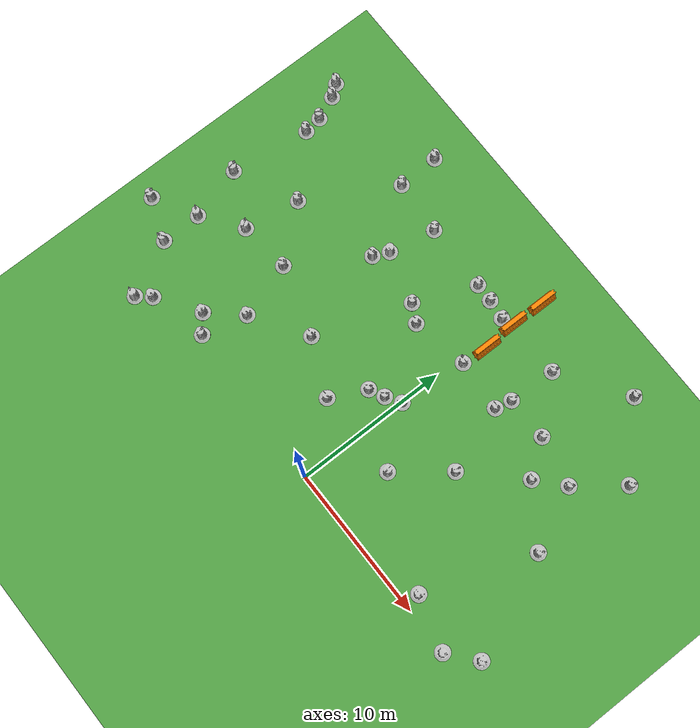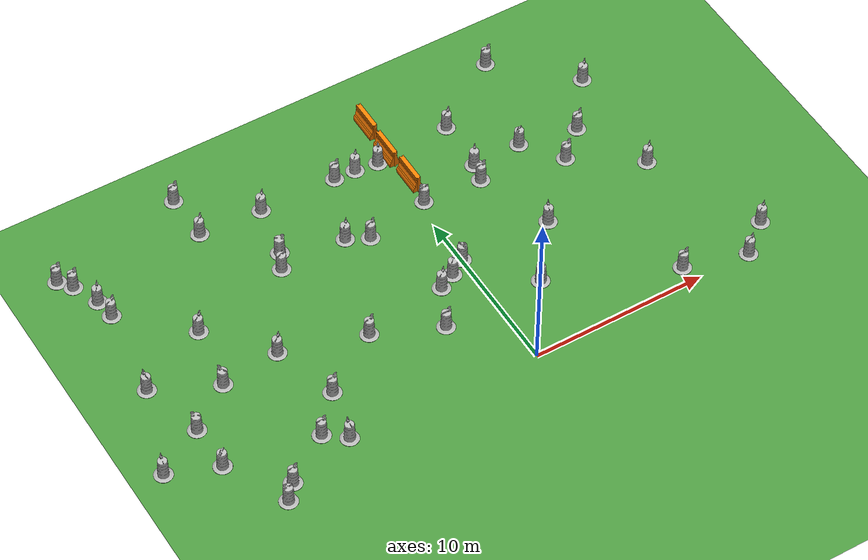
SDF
<?xml version="1.0" ?>
<sdf version="1.3">
  <world name="default">
    <physics type="ode">
      <gravity>0 0 -9.81</gravity>
      <ode>
        <solver>
          <type>quick</type>
          <iters>50</iters>
          <sor>1.4</sor>
        </solver>
        <constraints>
          <cfm>0.0</cfm>
          <erp>0.2</erp>
          <contact_max_correcting_vel>10.0</contact_max_correcting_vel>
          <contact_surface_layer>0.005</contact_surface_layer>
        </constraints>
      </ode>
    </physics>
    <scene>
      <ambient>0.4 0.4 0.4 1</ambient>
      <background>0.7 0.7 0.7 1</background>
      <shadows>1</shadows>
    </scene>
    <include>
      <uri>model://grass</uri>
    </include>
    <include>
      <uri>model://sun</uri>
    </include>
    <model name='drc_practice_organge_jersey_barrier'>
      <static>1</static>
      <link name='link'>
        <visual name='visual'>
          <geometry>
            <mesh>
              <uri>model://drc_practice_orange_jersey_barrier/meshes/jersey_barrier.dae</uri>
            </mesh>
          </geometry>
        </visual>
        <collision name='collision'>
          <pose>0 0 0.75 0 -0 0</pose>
          <geometry>
            <box>
              <size>0.65 1.8 1.5</size>
            </box>
          </geometry>
          <max_contacts>10</max_contacts>
          <surface>
            <bounce/>
            <friction>
              <ode/>
            </friction>
            <contact>
              <ode/>
            </contact>
          </surface>
        </collision>
        <velocity_decay>
          <linear>0</linear>
          <angular>0</angular>
        </velocity_decay>
        <self_collide>0</self_collide>
        <kinematic>0</kinematic>
        <gravity>1</gravity>
      </link>
      <pose>0.514773 17.7803 0 0 -0 0</pose>
    </model>
    <model name='drc_practice_organge_jersey_barrier_0'>
      <static>1</static>
      <link name='link'>
        <visual name='visual'>
          <geometry>
            <mesh>
              <uri>model://drc_practice_orange_jersey_barrier/meshes/jersey_barrier.dae</uri>
            </mesh>
          </geometry>
        </visual>
        <collision name='collision'>
          <pose>0 0 0.75 0 -0 0</pose>
          <geometry>
            <box>
              <size>0.65 1.8 1.5</size>
            </box>
          </geometry>
          <max_contacts>10</max_contacts>
          <surface>
            <bounce/>
            <friction>
              <ode/>
            </friction>
            <contact>
              <ode/>
            </contact>
          </surface>
        </collision>
        <velocity_decay>
          <linear>0</linear>
          <angular>0</angular>
        </velocity_decay>
        <self_collide>0</self_collide>
        <kinematic>0</kinematic>
        <gravity>1</gravity>
      </link>
      <pose>0.442247 15.578 0 0 -0 0</pose>
    </model>
    <model name='drc_practice_organge_jersey_barrier_1'>
      <static>1</static>
      <link name='link'>
        <visual name='visual'>
          <geometry>
            <mesh>
              <uri>model://drc_practice_orange_jersey_barrier/meshes/jersey_barrier.dae</uri>
            </mesh>
          </geometry>
        </visual>
        <collision name='collision'>
          <pose>0 0 0.75 0 -0 0</pose>
          <geometry>
            <box>
              <size>0.65 1.8 1.5</size>
            </box>
          </geometry>
          <max_contacts>10</max_contacts>
          <surface>
            <bounce/>
            <friction>
              <ode/>
            </friction>
            <contact>
              <ode/>
            </contact>
          </surface>
        </collision>
        <velocity_decay>
          <linear>0</linear>
          <angular>0</angular>
        </velocity_decay>
        <self_collide>0</self_collide>
        <kinematic>0</kinematic>
        <gravity>1</gravity>
      </link>
      <pose>0.579446 13.4107 0 0 -0 0</pose>
    </model>
    <model name='Construction Barrel'>
      <link name='link'>
        <inertial>
          <pose>0 0 0.4 0 -0 0</pose>
          <mass>500</mass>
          <inertia>
            <ixx>51.2096</ixx>
            <iyy>51.2096</iyy>
            <izz>25</izz>
            <ixy>0</ixy>
            <ixz>0</ixz>
            <iyz>0</iyz>
          </inertia>
        </inertial>
        <collision name='collision'>
          <pose>0 0 0.75 0 -0 0</pose>
          <geometry>
            <cylinder>
              <radius>0.5</radius>
              <length>1.5</length>
            </cylinder>
          </geometry>
          <max_contacts>10</max_contacts>
          <surface>
            <bounce/>
            <friction>
              <ode/>
            </friction>
            <contact>
              <ode/>
            </contact>
          </surface>
        </collision>
        <visual name='visual'>
          <geometry>
            <mesh>
              <uri>model://construction_barrel/meshes/construction_barrel.dae</uri>
            </mesh>
          </geometry>
        </visual>
        <velocity_decay>
          <linear>0</linear>
          <angular>0</angular>
        </velocity_decay>
        <self_collide>0</self_collide>
        <kinematic>0</kinematic>
        <gravity>1</gravity>
      </link>
      <pose>9.53804 1 0 0 -0 0</pose>
      <static>1</static>
    </model>
    <model name='Construction Barrel_0'>
      <link name='link'>
        <inertial>
          <pose>0 0 0.4 0 -0 0</pose>
          <mass>500</mass>
          <inertia>
            <ixx>51.2096</ixx>
            <iyy>51.2096</iyy>
            <izz>25</izz>
            <ixy>0</ixy>
            <ixz>0</ixz>
            <iyz>0</iyz>
          </inertia>
        </inertial>
        <collision name='collision'>
          <pose>0 0 0.75 0 -0 0</pose>
          <geometry>
            <cylinder>
              <radius>0.5</radius>
              <length>1.5</length>
            </cylinder>
          </geometry>
          <max_contacts>10</max_contacts>
          <surface>
            <bounce/>
            <friction>
              <ode/>
            </friction>
            <contact>
              <ode/>
            </contact>
          </surface>
        </collision>
        <visual name='visual'>
          <geometry>
            <mesh>
              <uri>model://construction_barrel/meshes/construction_barrel.dae</uri>
            </mesh>
          </geometry>
        </visual>
        <velocity_decay>
          <linear>0</linear>
          <angular>0</angular>
        </velocity_decay>
        <self_collide>0</self_collide>
        <kinematic>0</kinematic>
        <gravity>1</gravity>
      </link>
      <pose>13 0 0 0 -0 0.34</pose>
      <static>1</static>
    </model>
    <model name='Construction Barrel_1'>
      <link name='link'>
        <inertial>
          <pose>0 0 0.4 0 -0 0</pose>
          <mass>500</mass>
          <inertia>
            <ixx>51.2096</ixx>
            <iyy>51.2096</iyy>
            <izz>25</izz>
            <ixy>0</ixy>
            <ixz>0</ixz>
            <iyz>0</iyz>
          </inertia>
        </inertial>
        <collision name='collision'>
          <pose>0 0 0.75 0 -0 0</pose>
          <geometry>
            <cylinder>
              <radius>0.5</radius>
              <length>1.5</length>
            </cylinder>
          </geometry>
          <max_contacts>10</max_contacts>
          <surface>
            <bounce/>
            <friction>
              <ode/>
            </friction>
            <contact>
              <ode/>
            </contact>
          </surface>
        </collision>
        <visual name='visual'>
          <geometry>
            <mesh>
              <uri>model://construction_barrel/meshes/construction_barrel.dae</uri>
            </mesh>
          </geometry>
        </visual>
        <velocity_decay>
          <linear>0</linear>
          <angular>0</angular>
        </velocity_decay>
        <self_collide>0</self_collide>
        <kinematic>0</kinematic>
        <gravity>1</gravity>
      </link>
      <pose>14.7687 1.46616 0 0 -0 0.56</pose>
      <static>1</static>
    </model>
    <model name='Construction Barrel_2'>
      <link name='link'>
        <inertial>
          <pose>0 0 0.4 0 -0 0</pose>
          <mass>500</mass>
          <inertia>
            <ixx>51.2096</ixx>
            <iyy>51.2096</iyy>
            <izz>25</izz>
            <ixy>0</ixy>
            <ixz>0</ixz>
            <iyz>0</iyz>
          </inertia>
        </inertial>
        <collision name='collision'>
          <pose>0 0 0.75 0 -0 0</pose>
          <geometry>
            <cylinder>
              <radius>0.5</radius>
              <length>1.5</length>
            </cylinder>
          </geometry>
          <max_contacts>10</max_contacts>
          <surface>
            <bounce/>
            <friction>
              <ode/>
            </friction>
            <contact>
              <ode/>
            </contact>
          </surface>
        </collision>
        <visual name='visual'>
          <geometry>
            <mesh>
              <uri>model://construction_barrel/meshes/construction_barrel.dae</uri>
            </mesh>
          </geometry>
        </visual>
        <velocity_decay>
          <linear>0</linear>
          <angular>0</angular>
        </velocity_decay>
        <self_collide>0</self_collide>
        <kinematic>0</kinematic>
        <gravity>1</gravity>
      </link>
      <pose>12 8 0 0 -0 0.67</pose>
      <static>1</static>
    </model>
    <model name='Construction Barrel_3'>
      <link name='link'>
        <inertial>
          <pose>0 0 0.4 0 -0 0</pose>
          <mass>500</mass>
          <inertia>
            <ixx>51.2096</ixx>
            <iyy>51.2096</iyy>
            <izz>25</izz>
            <ixy>0</ixy>
            <ixz>0</ixz>
            <iyz>0</iyz>
          </inertia>
        </inertial>
        <collision name='collision'>
          <pose>0 0 0.75 0 -0 0</pose>
          <geometry>
            <cylinder>
              <radius>0.5</radius>
              <length>1.5</length>
            </cylinder>
          </geometry>
          <max_contacts>10</max_contacts>
          <surface>
            <bounce/>
            <friction>
              <ode/>
            </friction>
            <contact>
              <ode/>
            </contact>
          </surface>
        </collision>
        <visual name='visual'>
          <geometry>
            <mesh>
              <uri>model://construction_barrel/meshes/construction_barrel.dae</uri>
            </mesh>
          </geometry>
        </visual>
        <velocity_decay>
          <linear>0</linear>
          <angular>0</angular>
        </velocity_decay>
        <self_collide>0</self_collide>
        <kinematic>0</kinematic>
        <gravity>1</gravity>
      </link>
      <pose>8.43331 10.4276 0 0 -0 0</pose>
      <static>1</static>
    </model>
    <model name='Construction Barrel_4'>
      <link name='link'>
        <inertial>
          <pose>0 0 0.4 0 -0 0</pose>
          <mass>500</mass>
          <inertia>
            <ixx>51.2096</ixx>
            <iyy>51.2096</iyy>
            <izz>25</izz>
            <ixy>0</ixy>
            <ixz>0</ixz>
            <iyz>0</iyz>
          </inertia>
        </inertial>
        <collision name='collision'>
          <pose>0 0 0.75 0 -0 0</pose>
          <geometry>
            <cylinder>
              <radius>0.5</radius>
              <length>1.5</length>
            </cylinder>
          </geometry>
          <max_contacts>10</max_contacts>
          <surface>
            <bounce/>
            <friction>
              <ode/>
            </friction>
            <contact>
              <ode/>
            </contact>
          </surface>
        </collision>
        <visual name='visual'>
          <geometry>
            <mesh>
              <uri>model://construction_barrel/meshes/construction_barrel.dae</uri>
            </mesh>
          </geometry>
        </visual>
        <velocity_decay>
          <linear>0</linear>
          <angular>0</angular>
        </velocity_decay>
        <self_collide>0</self_collide>
        <kinematic>0</kinematic>
        <gravity>1</gravity>
      </link>
      <pose>10.1036 11.9209 0 0 -0 0.25</pose>
      <static>1</static>
    </model>
    <model name='Construction Barrel_5'>
      <link name='link'>
        <inertial>
          <pose>0 0 0.4 0 -0 0</pose>
          <mass>500</mass>
          <inertia>
            <ixx>51.2096</ixx>
            <iyy>51.2096</iyy>
            <izz>25</izz>
            <ixy>0</ixy>
            <ixz>0</ixz>
            <iyz>0</iyz>
          </inertia>
        </inertial>
        <collision name='collision'>
          <pose>0 0 0.75 0 -0 0</pose>
          <geometry>
            <cylinder>
              <radius>0.5</radius>
              <length>1.5</length>
            </cylinder>
          </geometry>
          <max_contacts>10</max_contacts>
          <surface>
            <bounce/>
            <friction>
              <ode/>
            </friction>
            <contact>
              <ode/>
            </contact>
          </surface>
        </collision>
        <visual name='visual'>
          <geometry>
            <mesh>
              <uri>model://construction_barrel/meshes/construction_barrel.dae</uri>
            </mesh>
          </geometry>
        </visual>
        <velocity_decay>
          <linear>0</linear>
          <angular>0</angular>
        </velocity_decay>
        <self_collide>0</self_collide>
        <kinematic>0</kinematic>
        <gravity>1</gravity>
      </link>
      <pose>12.3001 14.7701 0 0 -0 0.64</pose>
      <static>1</static>
    </model>
    <model name='Construction Barrel_6'>
      <link name='link'>
        <inertial>
          <pose>0 0 0.4 0 -0 0</pose>
          <mass>500</mass>
          <inertia>
            <ixx>51.2096</ixx>
            <iyy>51.2096</iyy>
            <izz>25</izz>
            <ixy>0</ixy>
            <ixz>0</ixz>
            <iyz>0</iyz>
          </inertia>
        </inertial>
        <collision name='collision'>
          <pose>0 0 0.75 0 -0 0</pose>
          <geometry>
            <cylinder>
              <radius>0.5</radius>
              <length>1.5</length>
            </cylinder>
          </geometry>
          <max_contacts>10</max_contacts>
          <surface>
            <bounce/>
            <friction>
              <ode/>
            </friction>
            <contact>
              <ode/>
            </contact>
          </surface>
        </collision>
        <visual name='visual'>
          <geometry>
            <mesh>
              <uri>model://construction_barrel/meshes/construction_barrel.dae</uri>
            </mesh>
          </geometry>
        </visual>
        <velocity_decay>
          <linear>0</linear>
          <angular>0</angular>
        </velocity_decay>
        <self_collide>0</self_collide>
        <kinematic>0</kinematic>
        <gravity>1</gravity>
      </link>
      <pose>4.16107 15.588 0 0 -0 0.49</pose>
      <static>1</static>
    </model>
    <model name='Construction Barrel_7'>
      <link name='link'>
        <inertial>
          <pose>0 0 0.4 0 -0 0</pose>
          <mass>500</mass>
          <inertia>
            <ixx>51.2096</ixx>
            <iyy>51.2096</iyy>
            <izz>25</izz>
            <ixy>0</ixy>
            <ixz>0</ixz>
            <iyz>0</iyz>
          </inertia>
        </inertial>
        <collision name='collision'>
          <pose>0 0 0.75 0 -0 0</pose>
          <geometry>
            <cylinder>
              <radius>0.5</radius>
              <length>1.5</length>
            </cylinder>
          </geometry>
          <max_contacts>10</max_contacts>
          <surface>
            <bounce/>
            <friction>
              <ode/>
            </friction>
            <contact>
              <ode/>
            </contact>
          </surface>
        </collision>
        <visual name='visual'>
          <geometry>
            <mesh>
              <uri>model://construction_barrel/meshes/construction_barrel.dae</uri>
            </mesh>
          </geometry>
        </visual>
        <velocity_decay>
          <linear>0</linear>
          <angular>0</angular>
        </velocity_decay>
        <self_collide>0</self_collide>
        <kinematic>0</kinematic>
        <gravity>1</gravity>
      </link>
      <pose>4.01787 12.5389 0 0 -0 0.95</pose>
      <static>1</static>
    </model>
    <model name='Construction Barrel_8'>
      <link name='link'>
        <inertial>
          <pose>0 0 0.4 0 -0 0</pose>
          <mass>500</mass>
          <inertia>
            <ixx>51.2096</ixx>
            <iyy>51.2096</iyy>
            <izz>25</izz>
            <ixy>0</ixy>
            <ixz>0</ixz>
            <iyz>0</iyz>
          </inertia>
        </inertial>
        <collision name='collision'>
          <pose>0 0 0.75 0 -0 0</pose>
          <geometry>
            <cylinder>
              <radius>0.5</radius>
              <length>1.5</length>
            </cylinder>
          </geometry>
          <max_contacts>10</max_contacts>
          <surface>
            <bounce/>
            <friction>
              <ode/>
            </friction>
            <contact>
              <ode/>
            </contact>
          </surface>
        </collision>
        <visual name='visual'>
          <geometry>
            <mesh>
              <uri>model://construction_barrel/meshes/construction_barrel.dae</uri>
            </mesh>
          </geometry>
        </visual>
        <velocity_decay>
          <linear>0</linear>
          <angular>0</angular>
        </velocity_decay>
        <self_collide>0</self_collide>
        <kinematic>0</kinematic>
        <gravity>1</gravity>
      </link>
      <pose>6.8418 12.5666 0 0 -0 10</pose>
      <static>1</static>
    </model>
    <model name='Construction Barrel_9'>
      <link name='link'>
        <inertial>
          <pose>0 0 0.4 0 -0 0</pose>
          <mass>500</mass>
          <inertia>
            <ixx>51.2096</ixx>
            <iyy>51.2096</iyy>
            <izz>25</izz>
            <ixy>0</ixy>
            <ixz>0</ixz>
            <iyz>0</iyz>
          </inertia>
        </inertial>
        <collision name='collision'>
          <pose>0 0 0.75 0 -0 0</pose>
          <geometry>
            <cylinder>
              <radius>0.5</radius>
              <length>1.5</length>
            </cylinder>
          </geometry>
          <max_contacts>10</max_contacts>
          <surface>
            <bounce/>
            <friction>
              <ode/>
            </friction>
            <contact>
              <ode/>
            </contact>
          </surface>
        </collision>
        <visual name='visual'>
          <geometry>
            <mesh>
              <uri>model://construction_barrel/meshes/construction_barrel.dae</uri>
            </mesh>
          </geometry>
        </visual>
        <velocity_decay>
          <linear>0</linear>
          <angular>0</angular>
        </velocity_decay>
        <self_collide>0</self_collide>
        <kinematic>0</kinematic>
        <gravity>1</gravity>
      </link>
      <pose>3.77118 11.4634 0 0 -0 0</pose>
      <static>1</static>
    </model>
    <model name='Construction Barrel_10'>
      <link name='link'>
        <inertial>
          <pose>0 0 0.4 0 -0 0</pose>
          <mass>500</mass>
          <inertia>
            <ixx>51.2096</ixx>
            <iyy>51.2096</iyy>
            <izz>25</izz>
            <ixy>0</ixy>
            <ixz>0</ixz>
            <iyz>0</iyz>
          </inertia>
        </inertial>
        <collision name='collision'>
          <pose>0 0 0.75 0 -0 0</pose>
          <geometry>
            <cylinder>
              <radius>0.5</radius>
              <length>1.5</length>
            </cylinder>
          </geometry>
          <max_contacts>10</max_contacts>
          <surface>
            <bounce/>
            <friction>
              <ode/>
            </friction>
            <contact>
              <ode/>
            </contact>
          </surface>
        </collision>
        <visual name='visual'>
          <geometry>
            <mesh>
              <uri>model://construction_barrel/meshes/construction_barrel.dae</uri>
            </mesh>
          </geometry>
        </visual>
        <velocity_decay>
          <linear>0</linear>
          <angular>0</angular>
        </velocity_decay>
        <self_collide>0</self_collide>
        <kinematic>0</kinematic>
        <gravity>1</gravity>
      </link>
      <pose>5.26991 7.20337 0 0 -0 1.2</pose>
      <static>1</static>
    </model>
    <model name='Construction Barrel_11'>
      <link name='link'>
        <inertial>
          <pose>0 0 0.4 0 -0 0</pose>
          <mass>500</mass>
          <inertia>
            <ixx>51.2096</ixx>
            <iyy>51.2096</iyy>
            <izz>25</izz>
            <ixy>0</ixy>
            <ixz>0</ixz>
            <iyz>0</iyz>
          </inertia>
        </inertial>
        <collision name='collision'>
          <pose>0 0 0.75 0 -0 0</pose>
          <geometry>
            <cylinder>
              <radius>0.5</radius>
              <length>1.5</length>
            </cylinder>
          </geometry>
          <max_contacts>10</max_contacts>
          <surface>
            <bounce/>
            <friction>
              <ode/>
            </friction>
            <contact>
              <ode/>
            </contact>
          </surface>
        </collision>
        <visual name='visual'>
          <geometry>
            <mesh>
              <uri>model://construction_barrel/meshes/construction_barrel.dae</uri>
            </mesh>
          </geometry>
        </visual>
        <velocity_decay>
          <linear>0</linear>
          <angular>0</angular>
        </velocity_decay>
        <self_collide>0</self_collide>
        <kinematic>0</kinematic>
        <gravity>1</gravity>
      </link>
      <pose>0.418745 11.7073 0 0 -0 3.14</pose>
      <static>1</static>
    </model>
    <model name='Construction Barrel_12'>
      <link name='link'>
        <inertial>
          <pose>0 0 0.4 0 -0 0</pose>
          <mass>500</mass>
          <inertia>
            <ixx>51.2096</ixx>
            <iyy>51.2096</iyy>
            <izz>25</izz>
            <ixy>0</ixy>
            <ixz>0</ixz>
            <iyz>0</iyz>
          </inertia>
        </inertial>
        <collision name='collision'>
          <pose>0 0 0.75 0 -0 0</pose>
          <geometry>
            <cylinder>
              <radius>0.5</radius>
              <length>1.5</length>
            </cylinder>
          </geometry>
          <max_contacts>10</max_contacts>
          <surface>
            <bounce/>
            <friction>
              <ode/>
            </friction>
            <contact>
              <ode/>
            </contact>
          </surface>
        </collision>
        <visual name='visual'>
          <geometry>
            <mesh>
              <uri>model://construction_barrel/meshes/construction_barrel.dae</uri>
            </mesh>
          </geometry>
        </visual>
        <velocity_decay>
          <linear>0</linear>
          <angular>0</angular>
        </velocity_decay>
        <self_collide>0</self_collide>
        <kinematic>0</kinematic>
        <gravity>1</gravity>
      </link>
      <pose>8.41186 18.4582 0 0 -0 0</pose>
      <static>1</static>
    </model>
    <model name='Construction Barrel_13'>
      <link name='link'>
        <inertial>
          <pose>0 0 0.4 0 -0 0</pose>
          <mass>500</mass>
          <inertia>
            <ixx>51.2096</ixx>
            <iyy>51.2096</iyy>
            <izz>25</izz>
            <ixy>0</ixy>
            <ixz>0</ixz>
            <iyz>0</iyz>
          </inertia>
        </inertial>
        <collision name='collision'>
          <pose>0 0 0.75 0 -0 0</pose>
          <geometry>
            <cylinder>
              <radius>0.5</radius>
              <length>1.5</length>
            </cylinder>
          </geometry>
          <max_contacts>10</max_contacts>
          <surface>
            <bounce/>
            <friction>
              <ode/>
            </friction>
            <contact>
              <ode/>
            </contact>
          </surface>
        </collision>
        <visual name='visual'>
          <geometry>
            <mesh>
              <uri>model://construction_barrel/meshes/construction_barrel.dae</uri>
            </mesh>
          </geometry>
        </visual>
        <velocity_decay>
          <linear>0</linear>
          <angular>0</angular>
        </velocity_decay>
        <self_collide>0</self_collide>
        <kinematic>0</kinematic>
        <gravity>1</gravity>
      </link>
      <pose>0.055808 7.30387 0 0 -0 5.1</pose>
      <static>1</static>
    </model>
    <model name='Construction Barrel_14'>
      <link name='link'>
        <inertial>
          <pose>0 0 0.4 0 -0 0</pose>
          <mass>500</mass>
          <inertia>
            <ixx>51.2096</ixx>
            <iyy>51.2096</iyy>
            <izz>25</izz>
            <ixy>0</ixy>
            <ixz>0</ixz>
            <iyz>0</iyz>
          </inertia>
        </inertial>
        <collision name='collision'>
          <pose>0 0 0.75 0 -0 0</pose>
          <geometry>
            <cylinder>
              <radius>0.5</radius>
              <length>1.5</length>
            </cylinder>
          </geometry>
          <max_contacts>10</max_contacts>
          <surface>
            <bounce/>
            <friction>
              <ode/>
            </friction>
            <contact>
              <ode/>
            </contact>
          </surface>
        </collision>
        <visual name='visual'>
          <geometry>
            <mesh>
              <uri>model://construction_barrel/meshes/construction_barrel.dae</uri>
            </mesh>
          </geometry>
        </visual>
        <velocity_decay>
          <linear>0</linear>
          <angular>0</angular>
        </velocity_decay>
        <self_collide>0</self_collide>
        <kinematic>0</kinematic>
        <gravity>1</gravity>
      </link>
      <pose>2.78714 4.0228 0 0 -0 74</pose>
      <static>1</static>
    </model>
    <model name='Construction Barrel_15'>
      <link name='link'>
        <inertial>
          <pose>0 0 0.4 0 -0 0</pose>
          <mass>500</mass>
          <inertia>
            <ixx>51.2096</ixx>
            <iyy>51.2096</iyy>
            <izz>25</izz>
            <ixy>0</ixy>
            <ixz>0</ixz>
            <iyz>0</iyz>
          </inertia>
        </inertial>
        <collision name='collision'>
          <pose>0 0 0.75 0 -0 0</pose>
          <geometry>
            <cylinder>
              <radius>0.5</radius>
              <length>1.5</length>
            </cylinder>
          </geometry>
          <max_contacts>10</max_contacts>
          <surface>
            <bounce/>
            <friction>
              <ode/>
            </friction>
            <contact>
              <ode/>
            </contact>
          </surface>
        </collision>
        <visual name='visual'>
          <geometry>
            <mesh>
              <uri>model://construction_barrel/meshes/construction_barrel.dae</uri>
            </mesh>
          </geometry>
        </visual>
        <velocity_decay>
          <linear>0</linear>
          <angular>0</angular>
        </velocity_decay>
        <self_collide>0</self_collide>
        <kinematic>0</kinematic>
        <gravity>1</gravity>
      </link>
      <pose>-0.886487 6.70646 0 0 -0 0.75</pose>
      <static>1</static>
    </model>
    <model name='Construction Barrel_16'>
      <link name='link'>
        <inertial>
          <pose>0 0 0.4 0 -0 0</pose>
          <mass>500</mass>
          <inertia>
            <ixx>51.2096</ixx>
            <iyy>51.2096</iyy>
            <izz>25</izz>
            <ixy>0</ixy>
            <ixz>0</ixz>
            <iyz>0</iyz>
          </inertia>
        </inertial>
        <collision name='collision'>
          <pose>0 0 0.75 0 -0 0</pose>
          <geometry>
            <cylinder>
              <radius>0.5</radius>
              <length>1.5</length>
            </cylinder>
          </geometry>
          <max_contacts>10</max_contacts>
          <surface>
            <bounce/>
            <friction>
              <ode/>
            </friction>
            <contact>
              <ode/>
            </contact>
          </surface>
        </collision>
        <visual name='visual'>
          <geometry>
            <mesh>
              <uri>model://construction_barrel/meshes/construction_barrel.dae</uri>
            </mesh>
          </geometry>
        </visual>
        <velocity_decay>
          <linear>0</linear>
          <angular>0</angular>
        </velocity_decay>
        <self_collide>0</self_collide>
        <kinematic>0</kinematic>
        <gravity>1</gravity>
      </link>
      <pose>-1.83836 6.23426 0 0 -0 0.66</pose>
      <static>1</static>
    </model>
    <model name='Construction Barrel_17'>
      <link name='link'>
        <inertial>
          <pose>0 0 0.4 0 -0 0</pose>
          <mass>500</mass>
          <inertia>
            <ixx>51.2096</ixx>
            <iyy>51.2096</iyy>
            <izz>25</izz>
            <ixy>0</ixy>
            <ixz>0</ixz>
            <iyz>0</iyz>
          </inertia>
        </inertial>
        <collision name='collision'>
          <pose>0 0 0.75 0 -0 0</pose>
          <geometry>
            <cylinder>
              <radius>0.5</radius>
              <length>1.5</length>
            </cylinder>
          </geometry>
          <max_contacts>10</max_contacts>
          <surface>
            <bounce/>
            <friction>
              <ode/>
            </friction>
            <contact>
              <ode/>
            </contact>
          </surface>
        </collision>
        <visual name='visual'>
          <geometry>
            <mesh>
              <uri>model://construction_barrel/meshes/construction_barrel.dae</uri>
            </mesh>
          </geometry>
        </visual>
        <velocity_decay>
          <linear>0</linear>
          <angular>0</angular>
        </velocity_decay>
        <self_collide>0</self_collide>
        <kinematic>0</kinematic>
        <gravity>1</gravity>
      </link>
      <pose>-2.96616 3.94142 0 0 -0 0.04</pose>
      <static>1</static>
    </model>
    <model name='Construction Barrel_18'>
      <link name='link'>
        <inertial>
          <pose>0 0 0.4 0 -0 0</pose>
          <mass>500</mass>
          <inertia>
            <ixx>51.2096</ixx>
            <iyy>51.2096</iyy>
            <izz>25</izz>
            <ixy>0</ixy>
            <ixz>0</ixz>
            <iyz>0</iyz>
          </inertia>
        </inertial>
        <collision name='collision'>
          <pose>0 0 0.75 0 -0 0</pose>
          <geometry>
            <cylinder>
              <radius>0.5</radius>
              <length>1.5</length>
            </cylinder>
          </geometry>
          <max_contacts>10</max_contacts>
          <surface>
            <bounce/>
            <friction>
              <ode/>
            </friction>
            <contact>
              <ode/>
            </contact>
          </surface>
        </collision>
        <visual name='visual'>
          <geometry>
            <mesh>
              <uri>model://construction_barrel/meshes/construction_barrel.dae</uri>
            </mesh>
          </geometry>
        </visual>
        <velocity_decay>
          <linear>0</linear>
          <angular>0</angular>
        </velocity_decay>
        <self_collide>0</self_collide>
        <kinematic>0</kinematic>
        <gravity>1</gravity>
      </link>
      <pose>-3.24854 11.0137 0 0 -0 0.234</pose>
      <static>1</static>
    </model>
    <model name='Construction Barrel_19'>
      <link name='link'>
        <inertial>
          <pose>0 0 0.4 0 -0 0</pose>
          <mass>500</mass>
          <inertia>
            <ixx>51.2096</ixx>
            <iyy>51.2096</iyy>
            <izz>25</izz>
            <ixy>0</ixy>
            <ixz>0</ixz>
            <iyz>0</iyz>
          </inertia>
        </inertial>
        <collision name='collision'>
          <pose>0 0 0.75 0 -0 0</pose>
          <geometry>
            <cylinder>
              <radius>0.5</radius>
              <length>1.5</length>
            </cylinder>
          </geometry>
          <max_contacts>10</max_contacts>
          <surface>
            <bounce/>
            <friction>
              <ode/>
            </friction>
            <contact>
              <ode/>
            </contact>
          </surface>
        </collision>
        <visual name='visual'>
          <geometry>
            <mesh>
              <uri>model://construction_barrel/meshes/construction_barrel.dae</uri>
            </mesh>
          </geometry>
        </visual>
        <velocity_decay>
          <linear>0</linear>
          <angular>0</angular>
        </velocity_decay>
        <self_collide>0</self_collide>
        <kinematic>0</kinematic>
        <gravity>1</gravity>
      </link>
      <pose>-6.56873 5.52935 0 0 -0 0.144</pose>
      <static>1</static>
    </model>
    <model name='Construction Barrel_20'>
      <link name='link'>
        <inertial>
          <pose>0 0 0.4 0 -0 0</pose>
          <mass>500</mass>
          <inertia>
            <ixx>51.2096</ixx>
            <iyy>51.2096</iyy>
            <izz>25</izz>
            <ixy>0</ixy>
            <ixz>0</ixz>
            <iyz>0</iyz>
          </inertia>
        </inertial>
        <collision name='collision'>
          <pose>0 0 0.75 0 -0 0</pose>
          <geometry>
            <cylinder>
              <radius>0.5</radius>
              <length>1.5</length>
            </cylinder>
          </geometry>
          <max_contacts>10</max_contacts>
          <surface>
            <bounce/>
            <friction>
              <ode/>
            </friction>
            <contact>
              <ode/>
            </contact>
          </surface>
        </collision>
        <visual name='visual'>
          <geometry>
            <mesh>
              <uri>model://construction_barrel/meshes/construction_barrel.dae</uri>
            </mesh>
          </geometry>
        </visual>
        <velocity_decay>
          <linear>0</linear>
          <angular>0</angular>
        </velocity_decay>
        <self_collide>0</self_collide>
        <kinematic>0</kinematic>
        <gravity>1</gravity>
      </link>
      <pose>-10.0427 3.27489 0 0 -0 0</pose>
      <static>1</static>
    </model>
    <model name='Construction Barrel_21'>
      <link name='link'>
        <inertial>
          <pose>0 0 0.4 0 -0 0</pose>
          <mass>500</mass>
          <inertia>
            <ixx>51.2096</ixx>
            <iyy>51.2096</iyy>
            <izz>25</izz>
            <ixy>0</ixy>
            <ixz>0</ixz>
            <iyz>0</iyz>
          </inertia>
        </inertial>
        <collision name='collision'>
          <pose>0 0 0.75 0 -0 0</pose>
          <geometry>
            <cylinder>
              <radius>0.5</radius>
              <length>1.5</length>
            </cylinder>
          </geometry>
          <max_contacts>10</max_contacts>
          <surface>
            <bounce/>
            <friction>
              <ode/>
            </friction>
            <contact>
              <ode/>
            </contact>
          </surface>
        </collision>
        <visual name='visual'>
          <geometry>
            <mesh>
              <uri>model://construction_barrel/meshes/construction_barrel.dae</uri>
            </mesh>
          </geometry>
        </visual>
        <velocity_decay>
          <linear>0</linear>
          <angular>0</angular>
        </velocity_decay>
        <self_collide>0</self_collide>
        <kinematic>0</kinematic>
        <gravity>1</gravity>
      </link>
      <pose>-11.1551 6.88887 0 0 -0 0.67</pose>
      <static>1</static>
    </model>
    <model name='Construction Barrel_22'>
      <link name='link'>
        <inertial>
          <pose>0 0 0.4 0 -0 0</pose>
          <mass>500</mass>
          <inertia>
            <ixx>51.2096</ixx>
            <iyy>51.2096</iyy>
            <izz>25</izz>
            <ixy>0</ixy>
            <ixz>0</ixz>
            <iyz>0</iyz>
          </inertia>
        </inertial>
        <collision name='collision'>
          <pose>0 0 0.75 0 -0 0</pose>
          <geometry>
            <cylinder>
              <radius>0.5</radius>
              <length>1.5</length>
            </cylinder>
          </geometry>
          <max_contacts>10</max_contacts>
          <surface>
            <bounce/>
            <friction>
              <ode/>
            </friction>
            <contact>
              <ode/>
            </contact>
          </surface>
        </collision>
        <visual name='visual'>
          <geometry>
            <mesh>
              <uri>model://construction_barrel/meshes/construction_barrel.dae</uri>
            </mesh>
          </geometry>
        </visual>
        <velocity_decay>
          <linear>0</linear>
          <angular>0</angular>
        </velocity_decay>
        <self_collide>0</self_collide>
        <kinematic>0</kinematic>
        <gravity>1</gravity>
      </link>
      <pose>-4.42241 11.6157 0 0 -0 0.776</pose>
      <static>1</static>
    </model>
    <model name='Construction Barrel_23'>
      <link name='link'>
        <inertial>
          <pose>0 0 0.4 0 -0 0</pose>
          <mass>500</mass>
          <inertia>
            <ixx>51.2096</ixx>
            <iyy>51.2096</iyy>
            <izz>25</izz>
            <ixy>0</ixy>
            <ixz>0</ixz>
            <iyz>0</iyz>
          </inertia>
        </inertial>
        <collision name='collision'>
          <pose>0 0 0.75 0 -0 0</pose>
          <geometry>
            <cylinder>
              <radius>0.5</radius>
              <length>1.5</length>
            </cylinder>
          </geometry>
          <max_contacts>10</max_contacts>
          <surface>
            <bounce/>
            <friction>
              <ode/>
            </friction>
            <contact>
              <ode/>
            </contact>
          </surface>
        </collision>
        <visual name='visual'>
          <geometry>
            <mesh>
              <uri>model://construction_barrel/meshes/construction_barrel.dae</uri>
            </mesh>
          </geometry>
        </visual>
        <velocity_decay>
          <linear>0</linear>
          <angular>0</angular>
        </velocity_decay>
        <self_collide>0</self_collide>
        <kinematic>0</kinematic>
        <gravity>1</gravity>
      </link>
      <pose>-7.79762 12.5656 0 0 -0 12</pose>
      <static>1</static>
    </model>
    <model name='Construction Barrel_24'>
      <link name='link'>
        <inertial>
          <pose>0 0 0.4 0 -0 0</pose>
          <mass>500</mass>
          <inertia>
            <ixx>51.2096</ixx>
            <iyy>51.2096</iyy>
            <izz>25</izz>
            <ixy>0</ixy>
            <ixz>0</ixz>
            <iyz>0</iyz>
          </inertia>
        </inertial>
        <collision name='collision'>
          <pose>0 0 0.75 0 -0 0</pose>
          <geometry>
            <cylinder>
              <radius>0.5</radius>
              <length>1.5</length>
            </cylinder>
          </geometry>
          <max_contacts>10</max_contacts>
          <surface>
            <bounce/>
            <friction>
              <ode/>
            </friction>
            <contact>
              <ode/>
            </contact>
          </surface>
        </collision>
        <visual name='visual'>
          <geometry>
            <mesh>
              <uri>model://construction_barrel/meshes/construction_barrel.dae</uri>
            </mesh>
          </geometry>
        </visual>
        <velocity_decay>
          <linear>0</linear>
          <angular>0</angular>
        </velocity_decay>
        <self_collide>0</self_collide>
        <kinematic>0</kinematic>
        <gravity>1</gravity>
      </link>
      <pose>-8.25694 11.5624 0 0 -0 6.6</pose>
      <static>1</static>
    </model>
    <model name='Construction Barrel_25'>
      <link name='link'>
        <inertial>
          <pose>0 0 0.4 0 -0 0</pose>
          <mass>500</mass>
          <inertia>
            <ixx>51.2096</ixx>
            <iyy>51.2096</iyy>
            <izz>25</izz>
            <ixy>0</ixy>
            <ixz>0</ixz>
            <iyz>0</iyz>
          </inertia>
        </inertial>
        <collision name='collision'>
          <pose>0 0 0.75 0 -0 0</pose>
          <geometry>
            <cylinder>
              <radius>0.5</radius>
              <length>1.5</length>
            </cylinder>
          </geometry>
          <max_contacts>10</max_contacts>
          <surface>
            <bounce/>
            <friction>
              <ode/>
            </friction>
            <contact>
              <ode/>
            </contact>
          </surface>
        </collision>
        <visual name='visual'>
          <geometry>
            <mesh>
              <uri>model://construction_barrel/meshes/construction_barrel.dae</uri>
            </mesh>
          </geometry>
        </visual>
        <velocity_decay>
          <linear>0</linear>
          <angular>0</angular>
        </velocity_decay>
        <self_collide>0</self_collide>
        <kinematic>0</kinematic>
        <gravity>1</gravity>
      </link>
      <pose>-7.20493 15.5824 0 0 -0 0.68</pose>
      <static>1</static>
    </model>
    <model name='Construction Barrel_26'>
      <link name='link'>
        <inertial>
          <pose>0 0 0.4 0 -0 0</pose>
          <mass>500</mass>
          <inertia>
            <ixx>51.2096</ixx>
            <iyy>51.2096</iyy>
            <izz>25</izz>
            <ixy>0</ixy>
            <ixz>0</ixz>
            <iyz>0</iyz>
          </inertia>
        </inertial>
        <collision name='collision'>
          <pose>0 0 0.75 0 -0 0</pose>
          <geometry>
            <cylinder>
              <radius>0.5</radius>
              <length>1.5</length>
            </cylinder>
          </geometry>
          <max_contacts>10</max_contacts>
          <surface>
            <bounce/>
            <friction>
              <ode/>
            </friction>
            <contact>
              <ode/>
            </contact>
          </surface>
        </collision>
        <visual name='visual'>
          <geometry>
            <mesh>
              <uri>model://construction_barrel/meshes/construction_barrel.dae</uri>
            </mesh>
          </geometry>
        </visual>
        <velocity_decay>
          <linear>0</linear>
          <angular>0</angular>
        </velocity_decay>
        <self_collide>0</self_collide>
        <kinematic>0</kinematic>
        <gravity>1</gravity>
      </link>
      <pose>-0.271428 15.2909 0 0 -0 0.94</pose>
      <static>1</static>
    </model>
    <model name='Construction Barrel_27'>
      <link name='link'>
        <inertial>
          <pose>0 0 0.4 0 -0 0</pose>
          <mass>500</mass>
          <inertia>
            <ixx>51.2096</ixx>
            <iyy>51.2096</iyy>
            <izz>25</izz>
            <ixy>0</ixy>
            <ixz>0</ixz>
            <iyz>0</iyz>
          </inertia>
        </inertial>
        <collision name='collision'>
          <pose>0 0 0.75 0 -0 0</pose>
          <geometry>
            <cylinder>
              <radius>0.5</radius>
              <length>1.5</length>
            </cylinder>
          </geometry>
          <max_contacts>10</max_contacts>
          <surface>
            <bounce/>
            <friction>
              <ode/>
            </friction>
            <contact>
              <ode/>
            </contact>
          </surface>
        </collision>
        <visual name='visual'>
          <geometry>
            <mesh>
              <uri>model://construction_barrel/meshes/construction_barrel.dae</uri>
            </mesh>
          </geometry>
        </visual>
        <velocity_decay>
          <linear>0</linear>
          <angular>0</angular>
        </velocity_decay>
        <self_collide>0</self_collide>
        <kinematic>0</kinematic>
        <gravity>1</gravity>
      </link>
      <pose>-1.5796 15.4545 0 0 -0 0.86</pose>
      <static>1</static>
    </model>
    <model name='Construction Barrel_28'>
      <link name='link'>
        <inertial>
          <pose>0 0 0.4 0 -0 0</pose>
          <mass>500</mass>
          <inertia>
            <ixx>51.2096</ixx>
            <iyy>51.2096</iyy>
            <izz>25</izz>
            <ixy>0</ixy>
            <ixz>0</ixz>
            <iyz>0</iyz>
          </inertia>
        </inertial>
        <collision name='collision'>
          <pose>0 0 0.75 0 -0 0</pose>
          <geometry>
            <cylinder>
              <radius>0.5</radius>
              <length>1.5</length>
            </cylinder>
          </geometry>
          <max_contacts>10</max_contacts>
          <surface>
            <bounce/>
            <friction>
              <ode/>
            </friction>
            <contact>
              <ode/>
            </contact>
          </surface>
        </collision>
        <visual name='visual'>
          <geometry>
            <mesh>
              <uri>model://construction_barrel/meshes/construction_barrel.dae</uri>
            </mesh>
          </geometry>
        </visual>
        <velocity_decay>
          <linear>0</linear>
          <angular>0</angular>
        </velocity_decay>
        <self_collide>0</self_collide>
        <kinematic>0</kinematic>
        <gravity>1</gravity>
      </link>
      <pose>-2.8104 15.4957 0 0 -0 0.105</pose>
      <static>1</static>
    </model>
    <model name='Construction Barrel_29'>
      <link name='link'>
        <inertial>
          <pose>0 0 0.4 0 -0 0</pose>
          <mass>500</mass>
          <inertia>
            <ixx>51.2096</ixx>
            <iyy>51.2096</iyy>
            <izz>25</izz>
            <ixy>0</ixy>
            <ixz>0</ixz>
            <iyz>0</iyz>
          </inertia>
        </inertial>
        <collision name='collision'>
          <pose>0 0 0.75 0 -0 0</pose>
          <geometry>
            <cylinder>
              <radius>0.5</radius>
              <length>1.5</length>
            </cylinder>
          </geometry>
          <max_contacts>10</max_contacts>
          <surface>
            <bounce/>
            <friction>
              <ode/>
            </friction>
            <contact>
              <ode/>
            </contact>
          </surface>
        </collision>
        <visual name='visual'>
          <geometry>
            <mesh>
              <uri>model://construction_barrel/meshes/construction_barrel.dae</uri>
            </mesh>
          </geometry>
        </visual>
        <velocity_decay>
          <linear>0</linear>
          <angular>0</angular>
        </velocity_decay>
        <self_collide>0</self_collide>
        <kinematic>0</kinematic>
        <gravity>1</gravity>
      </link>
      <pose>-10.7404 15.8279 0 0 -0 0.674</pose>
      <static>1</static>
    </model>
    <model name='Construction Barrel_30'>
      <link name='link'>
        <inertial>
          <pose>0 0 0.4 0 -0 0</pose>
          <mass>500</mass>
          <inertia>
            <ixx>51.2096</ixx>
            <iyy>51.2096</iyy>
            <izz>25</izz>
            <ixy>0</ixy>
            <ixz>0</ixz>
            <iyz>0</iyz>
          </inertia>
        </inertial>
        <collision name='collision'>
          <pose>0 0 0.75 0 -0 0</pose>
          <geometry>
            <cylinder>
              <radius>0.5</radius>
              <length>1.5</length>
            </cylinder>
          </geometry>
          <max_contacts>10</max_contacts>
          <surface>
            <bounce/>
            <friction>
              <ode/>
            </friction>
            <contact>
              <ode/>
            </contact>
          </surface>
        </collision>
        <visual name='visual'>
          <geometry>
            <mesh>
              <uri>model://construction_barrel/meshes/construction_barrel.dae</uri>
            </mesh>
          </geometry>
        </visual>
        <velocity_decay>
          <linear>0</linear>
          <angular>0</angular>
        </velocity_decay>
        <self_collide>0</self_collide>
        <kinematic>0</kinematic>
        <gravity>1</gravity>
      </link>
      <pose>-10.8269 18.5144 0 0 -0 0.1234</pose>
      <static>1</static>
    </model>
    <model name='Construction Barrel_31'>
      <link name='link'>
        <inertial>
          <pose>0 0 0.4 0 -0 0</pose>
          <mass>500</mass>
          <inertia>
            <ixx>51.2096</ixx>
            <iyy>51.2096</iyy>
            <izz>25</izz>
            <ixy>0</ixy>
            <ixz>0</ixz>
            <iyz>0</iyz>
          </inertia>
        </inertial>
        <collision name='collision'>
          <pose>0 0 0.75 0 -0 0</pose>
          <geometry>
            <cylinder>
              <radius>0.5</radius>
              <length>1.5</length>
            </cylinder>
          </geometry>
          <max_contacts>10</max_contacts>
          <surface>
            <bounce/>
            <friction>
              <ode/>
            </friction>
            <contact>
              <ode/>
            </contact>
          </surface>
        </collision>
        <visual name='visual'>
          <geometry>
            <mesh>
              <uri>model://construction_barrel/meshes/construction_barrel.dae</uri>
            </mesh>
          </geometry>
        </visual>
        <velocity_decay>
          <linear>0</linear>
          <angular>0</angular>
        </velocity_decay>
        <self_collide>0</self_collide>
        <kinematic>0</kinematic>
        <gravity>1</gravity>
      </link>
      <pose>-18.5881 16.7657 0 0 -0 0</pose>
      <static>1</static>
    </model>
    <model name='Construction Barrel_32'>
      <link name='link'>
        <inertial>
          <pose>0 0 0.4 0 -0 0</pose>
          <mass>500</mass>
          <inertia>
            <ixx>51.2096</ixx>
            <iyy>51.2096</iyy>
            <izz>25</izz>
            <ixy>0</ixy>
            <ixz>0</ixz>
            <iyz>0</iyz>
          </inertia>
        </inertial>
        <collision name='collision'>
          <pose>0 0 0.75 0 -0 0</pose>
          <geometry>
            <cylinder>
              <radius>0.5</radius>
              <length>1.5</length>
            </cylinder>
          </geometry>
          <max_contacts>10</max_contacts>
          <surface>
            <bounce/>
            <friction>
              <ode/>
            </friction>
            <contact>
              <ode/>
            </contact>
          </surface>
        </collision>
        <visual name='visual'>
          <geometry>
            <mesh>
              <uri>model://construction_barrel/meshes/construction_barrel.dae</uri>
            </mesh>
          </geometry>
        </visual>
        <velocity_decay>
          <linear>0</linear>
          <angular>0</angular>
        </velocity_decay>
        <self_collide>0</self_collide>
        <kinematic>0</kinematic>
        <gravity>1</gravity>
      </link>
      <pose>-18.0315 16.0176 0 0 -0 0</pose>
      <static>1</static>
    </model>
    <model name='Construction Barrel_33'>
      <link name='link'>
        <inertial>
          <pose>0 0 0.4 0 -0 0</pose>
          <mass>500</mass>
          <inertia>
            <ixx>51.2096</ixx>
            <iyy>51.2096</iyy>
            <izz>25</izz>
            <ixy>0</ixy>
            <ixz>0</ixz>
            <iyz>0</iyz>
          </inertia>
        </inertial>
        <collision name='collision'>
          <pose>0 0 0.75 0 -0 0</pose>
          <geometry>
            <cylinder>
              <radius>0.5</radius>
              <length>1.5</length>
            </cylinder>
          </geometry>
          <max_contacts>10</max_contacts>
          <surface>
            <bounce/>
            <friction>
              <ode/>
            </friction>
            <contact>
              <ode/>
            </contact>
          </surface>
        </collision>
        <visual name='visual'>
          <geometry>
            <mesh>
              <uri>model://construction_barrel/meshes/construction_barrel.dae</uri>
            </mesh>
          </geometry>
        </visual>
        <velocity_decay>
          <linear>0</linear>
          <angular>0</angular>
        </velocity_decay>
        <self_collide>0</self_collide>
        <kinematic>0</kinematic>
        <gravity>1</gravity>
      </link>
      <pose>-17.3931 14.5128 0 0 -0 0.97</pose>
      <static>1</static>
    </model>
    <model name='Construction Barrel_34'>
      <link name='link'>
        <inertial>
          <pose>0 0 0.4 0 -0 0</pose>
          <mass>500</mass>
          <inertia>
            <ixx>51.2096</ixx>
            <iyy>51.2096</iyy>
            <izz>25</izz>
            <ixy>0</ixy>
            <ixz>0</ixz>
            <iyz>0</iyz>
          </inertia>
        </inertial>
        <collision name='collision'>
          <pose>0 0 0.75 0 -0 0</pose>
          <geometry>
            <cylinder>
              <radius>0.5</radius>
              <length>1.5</length>
            </cylinder>
          </geometry>
          <max_contacts>10</max_contacts>
          <surface>
            <bounce/>
            <friction>
              <ode/>
            </friction>
            <contact>
              <ode/>
            </contact>
          </surface>
        </collision>
        <visual name='visual'>
          <geometry>
            <mesh>
              <uri>model://construction_barrel/meshes/construction_barrel.dae</uri>
            </mesh>
          </geometry>
        </visual>
        <velocity_decay>
          <linear>0</linear>
          <angular>0</angular>
        </velocity_decay>
        <self_collide>0</self_collide>
        <kinematic>0</kinematic>
        <gravity>1</gravity>
      </link>
      <pose>-17.219 13.344 0 0 -0 0.38</pose>
      <static>1</static>
    </model>
    <model name='Construction Barrel_35'>
      <link name='link'>
        <inertial>
          <pose>0 0 0.4 0 -0 0</pose>
          <mass>500</mass>
          <inertia>
            <ixx>51.2096</ixx>
            <iyy>51.2096</iyy>
            <izz>25</izz>
            <ixy>0</ixy>
            <ixz>0</ixz>
            <iyz>0</iyz>
          </inertia>
        </inertial>
        <collision name='collision'>
          <pose>0 0 0.75 0 -0 0</pose>
          <geometry>
            <cylinder>
              <radius>0.5</radius>
              <length>1.5</length>
            </cylinder>
          </geometry>
          <max_contacts>10</max_contacts>
          <surface>
            <bounce/>
            <friction>
              <ode/>
            </friction>
            <contact>
              <ode/>
            </contact>
          </surface>
        </collision>
        <visual name='visual'>
          <geometry>
            <mesh>
              <uri>model://construction_barrel/meshes/construction_barrel.dae</uri>
            </mesh>
          </geometry>
        </visual>
        <velocity_decay>
          <linear>0</linear>
          <angular>0</angular>
        </velocity_decay>
        <self_collide>0</self_collide>
        <kinematic>0</kinematic>
        <gravity>1</gravity>
      </link>
      <pose>-13.9107 10.1451 0 0 -0 0.590</pose>
      <static>1</static>
    </model>
    <model name='Construction Barrel_36'>
      <link name='link'>
        <inertial>
          <pose>0 0 0.4 0 -0 0</pose>
          <mass>500</mass>
          <inertia>
            <ixx>51.2096</ixx>
            <iyy>51.2096</iyy>
            <izz>25</izz>
            <ixy>0</ixy>
            <ixz>0</ixz>
            <iyz>0</iyz>
          </inertia>
        </inertial>
        <collision name='collision'>
          <pose>0 0 0.75 0 -0 0</pose>
          <geometry>
            <cylinder>
              <radius>0.5</radius>
              <length>1.5</length>
            </cylinder>
          </geometry>
          <max_contacts>10</max_contacts>
          <surface>
            <bounce/>
            <friction>
              <ode/>
            </friction>
            <contact>
              <ode/>
            </contact>
          </surface>
        </collision>
        <visual name='visual'>
          <geometry>
            <mesh>
              <uri>model://construction_barrel/meshes/construction_barrel.dae</uri>
            </mesh>
          </geometry>
        </visual>
        <velocity_decay>
          <linear>0</linear>
          <angular>0</angular>
        </velocity_decay>
        <self_collide>0</self_collide>
        <kinematic>0</kinematic>
        <gravity>1</gravity>
      </link>
      <pose>-16.982 4.70079 0 0 -0 2.6</pose>
      <static>1</static>
    </model>
    <model name='Construction Barrel_37'>
      <link name='link'>
        <inertial>
          <pose>0 0 0.4 0 -0 0</pose>
          <mass>500</mass>
          <inertia>
            <ixx>51.2096</ixx>
            <iyy>51.2096</iyy>
            <izz>25</izz>
            <ixy>0</ixy>
            <ixz>0</ixz>
            <iyz>0</iyz>
          </inertia>
        </inertial>
        <collision name='collision'>
          <pose>0 0 0.75 0 -0 0</pose>
          <geometry>
            <cylinder>
              <radius>0.5</radius>
              <length>1.5</length>
            </cylinder>
          </geometry>
          <max_contacts>10</max_contacts>
          <surface>
            <bounce/>
            <friction>
              <ode/>
            </friction>
            <contact>
              <ode/>
            </contact>
          </surface>
        </collision>
        <visual name='visual'>
          <geometry>
            <mesh>
              <uri>model://construction_barrel/meshes/construction_barrel.dae</uri>
            </mesh>
          </geometry>
        </visual>
        <velocity_decay>
          <linear>0</linear>
          <angular>0</angular>
        </velocity_decay>
        <self_collide>0</self_collide>
        <kinematic>0</kinematic>
        <gravity>1</gravity>
      </link>
      <pose>-17.9385 8.19262 0 0 -0 1.7</pose>
      <static>1</static>
    </model>
    <model name='Construction Barrel_38'>
      <link name='link'>
        <inertial>
          <pose>0 0 0.4 0 -0 0</pose>
          <mass>500</mass>
          <inertia>
            <ixx>51.2096</ixx>
            <iyy>51.2096</iyy>
            <izz>25</izz>
            <ixy>0</ixy>
            <ixz>0</ixz>
            <iyz>0</iyz>
          </inertia>
        </inertial>
        <collision name='collision'>
          <pose>0 0 0.75 0 -0 0</pose>
          <geometry>
            <cylinder>
              <radius>0.5</radius>
              <length>1.5</length>
            </cylinder>
          </geometry>
          <max_contacts>10</max_contacts>
          <surface>
            <bounce/>
            <friction>
              <ode/>
            </friction>
            <contact>
              <ode/>
            </contact>
          </surface>
        </collision>
        <visual name='visual'>
          <geometry>
            <mesh>
              <uri>model://construction_barrel/meshes/construction_barrel.dae</uri>
            </mesh>
          </geometry>
        </visual>
        <velocity_decay>
          <linear>0</linear>
          <angular>0</angular>
        </velocity_decay>
        <self_collide>0</self_collide>
        <kinematic>0</kinematic>
        <gravity>1</gravity>
      </link>
      <pose>-16.9716 2.09937 0 0 -0 3.8</pose>
      <static>1</static>
    </model>
    <model name='Construction Barrel_39'>
      <link name='link'>
        <inertial>
          <pose>0 0 0.4 0 -0 0</pose>
          <mass>500</mass>
          <inertia>
            <ixx>51.2096</ixx>
            <iyy>51.2096</iyy>
            <izz>25</izz>
            <ixy>0</ixy>
            <ixz>0</ixz>
            <iyz>0</iyz>
          </inertia>
        </inertial>
        <collision name='collision'>
          <pose>0 0 0.75 0 -0 0</pose>
          <geometry>
            <cylinder>
              <radius>0.5</radius>
              <length>1.5</length>
            </cylinder>
          </geometry>
          <max_contacts>10</max_contacts>
          <surface>
            <bounce/>
            <friction>
              <ode/>
            </friction>
            <contact>
              <ode/>
            </contact>
          </surface>
        </collision>
        <visual name='visual'>
          <geometry>
            <mesh>
              <uri>model://construction_barrel/meshes/construction_barrel.dae</uri>
            </mesh>
          </geometry>
        </visual>
        <velocity_decay>
          <linear>0</linear>
          <angular>0</angular>
        </velocity_decay>
        <self_collide>0</self_collide>
        <kinematic>0</kinematic>
        <gravity>1</gravity>
      </link>
      <pose>-19.7038 3.15688 0 0 -0 1.4</pose>
      <static>1</static>
    </model>
    <model name='Construction Barrel_40'>
      <link name='link'>
        <inertial>
          <pose>0 0 0.4 0 -0 0</pose>
          <mass>500</mass>
          <inertia>
            <ixx>51.2096</ixx>
            <iyy>51.2096</iyy>
            <izz>25</izz>
            <ixy>0</ixy>
            <ixz>0</ixz>
            <iyz>0</iyz>
          </inertia>
        </inertial>
        <collision name='collision'>
          <pose>0 0 0.75 0 -0 0</pose>
          <geometry>
            <cylinder>
              <radius>0.5</radius>
              <length>1.5</length>
            </cylinder>
          </geometry>
          <max_contacts>10</max_contacts>
          <surface>
            <bounce/>
            <friction>
              <ode/>
            </friction>
            <contact>
              <ode/>
            </contact>
          </surface>
        </collision>
        <visual name='visual'>
          <geometry>
            <mesh>
              <uri>model://construction_barrel/meshes/construction_barrel.dae</uri>
            </mesh>
          </geometry>
        </visual>
        <velocity_decay>
          <linear>0</linear>
          <angular>0</angular>
        </velocity_decay>
        <self_collide>0</self_collide>
        <kinematic>0</kinematic>
        <gravity>1</gravity>
      </link>
      <pose>-14.4869 6.52821 0 0 -0 2.2</pose>
      <static>1</static>
    </model>
    <model name='Construction Barrel_41'>
      <link name='link'>
        <inertial>
          <pose>0 0 0.4 0 -0 0</pose>
          <mass>500</mass>
          <inertia>
            <ixx>51.2096</ixx>
            <iyy>51.2096</iyy>
            <izz>25</izz>
            <ixy>0</ixy>
            <ixz>0</ixz>
            <iyz>0</iyz>
          </inertia>
        </inertial>
        <collision name='collision'>
          <pose>0 0 0.75 0 -0 0</pose>
          <geometry>
            <cylinder>
              <radius>0.5</radius>
              <length>1.5</length>
            </cylinder>
          </geometry>
          <max_contacts>10</max_contacts>
          <surface>
            <bounce/>
            <friction>
              <ode/>
            </friction>
            <contact>
              <ode/>
            </contact>
          </surface>
        </collision>
        <visual name='visual'>
          <geometry>
            <mesh>
              <uri>model://construction_barrel/meshes/construction_barrel.dae</uri>
            </mesh>
          </geometry>
        </visual>
        <velocity_decay>
          <linear>0</linear>
          <angular>0</angular>
        </velocity_decay>
        <self_collide>0</self_collide>
        <kinematic>0</kinematic>
        <gravity>1</gravity>
      </link>
      <pose>-15.2342 -1.4018 0 0 -0 9.4</pose>
      <static>1</static>
    </model>
    <model name='Construction Barrel_42'>
      <link name='link'>
        <inertial>
          <pose>0 0 0.4 0 -0 0</pose>
          <mass>500</mass>
          <inertia>
            <ixx>51.2096</ixx>
            <iyy>51.2096</iyy>
            <izz>25</izz>
            <ixy>0</ixy>
            <ixz>0</ixz>
            <iyz>0</iyz>
          </inertia>
        </inertial>
        <collision name='collision'>
          <pose>0 0 0.75 0 -0 0</pose>
          <geometry>
            <cylinder>
              <radius>0.5</radius>
              <length>1.5</length>
            </cylinder>
          </geometry>
          <max_contacts>10</max_contacts>
          <surface>
            <bounce/>
            <friction>
              <ode/>
            </friction>
            <contact>
              <ode/>
            </contact>
          </surface>
        </collision>
        <visual name='visual'>
          <geometry>
            <mesh>
              <uri>model://construction_barrel/meshes/construction_barrel.dae</uri>
            </mesh>
          </geometry>
        </visual>
        <velocity_decay>
          <linear>0</linear>
          <angular>0</angular>
        </velocity_decay>
        <self_collide>0</self_collide>
        <kinematic>0</kinematic>
        <gravity>1</gravity>
      </link>
      <pose>-14.5008 -0.55746 0 0 -0 0</pose>
      <static>1</static>
    </model>
    <model name='Construction Barrel_43'>
      <link name='link'>
        <inertial>
          <pose>0 0 0.4 0 -0 0</pose>
          <mass>500</mass>
          <inertia>
            <ixx>51.2096</ixx>
            <iyy>51.2096</iyy>
            <izz>25</izz>
            <ixy>0</ixy>
            <ixz>0</ixz>
            <iyz>0</iyz>
          </inertia>
        </inertial>
        <collision name='collision'>
          <pose>0 0 0.75 0 -0 0</pose>
          <geometry>
            <cylinder>
              <radius>0.5</radius>
              <length>1.5</length>
            </cylinder>
          </geometry>
          <max_contacts>10</max_contacts>
          <surface>
            <bounce/>
            <friction>
              <ode/>
            </friction>
            <contact>
              <ode/>
            </contact>
          </surface>
        </collision>
        <visual name='visual'>
          <geometry>
            <mesh>
              <uri>model://construction_barrel/meshes/construction_barrel.dae</uri>
            </mesh>
          </geometry>
        </visual>
        <velocity_decay>
          <linear>0</linear>
          <angular>0</angular>
        </velocity_decay>
        <self_collide>0</self_collide>
        <kinematic>0</kinematic>
        <gravity>1</gravity>
      </link>
      <pose>-11.8416 1.2439 0 0 -0 0</pose>
      <static>1</static>
    </model>
    <model name='Construction Barrel_44'>
      <link name='link'>
        <inertial>
          <pose>0 0 0.4 0 -0 0</pose>
          <mass>500</mass>
          <inertia>
            <ixx>51.2096</ixx>
            <iyy>51.2096</iyy>
            <izz>25</izz>
            <ixy>0</ixy>
            <ixz>0</ixz>
            <iyz>0</iyz>
          </inertia>
        </inertial>
        <collision name='collision'>
          <pose>0 0 0.75 0 -0 0</pose>
          <geometry>
            <cylinder>
              <radius>0.5</radius>
              <length>1.5</length>
            </cylinder>
          </geometry>
          <max_contacts>10</max_contacts>
          <surface>
            <bounce/>
            <friction>
              <ode/>
            </friction>
            <contact>
              <ode/>
            </contact>
          </surface>
        </collision>
        <visual name='visual'>
          <geometry>
            <mesh>
              <uri>model://construction_barrel/meshes/construction_barrel.dae</uri>
            </mesh>
          </geometry>
        </visual>
        <velocity_decay>
          <linear>0</linear>
          <angular>0</angular>
        </velocity_decay>
        <self_collide>0</self_collide>
        <kinematic>0</kinematic>
        <gravity>1</gravity>
      </link>
      <pose>-10.7383 0.373006 0 0 -0 1.57</pose>
      <static>1</static>
    </model>
  </world>
</sdf>

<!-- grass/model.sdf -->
<sdf version='1.3'>
  <model name='grass'>
    <static>true</static>
    <link name='link'>
      <collision name='collision'>
        <max_contacts>4</max_contacts>
        <geometry>
          <plane>
            <normal>0 0 1</normal>
            <size>42.85 42.85</size>
          </plane>
        </geometry>
        <surface>
          <friction>
            <ode>
              <mu>1</mu>
              <mu2>0.7</mu2>
            </ode>
          </friction>
        </surface>
      </collision>
      <visual name="visual">
        <cast_shadows>false</cast_shadows>
        <geometry>
          <plane>
            <normal>0 0 1</normal>
            <size>42.85 42.85</size>
          </plane>
        </geometry>
        <material>
          <script>
            <uri>model://grass/materials/scripts</uri>
            <uri>model://grass/materials/textures</uri>
            <name>igvc/grass</name>
          </script>
        </material>
      </visual>
    </link>
  </model>
</sdf>
